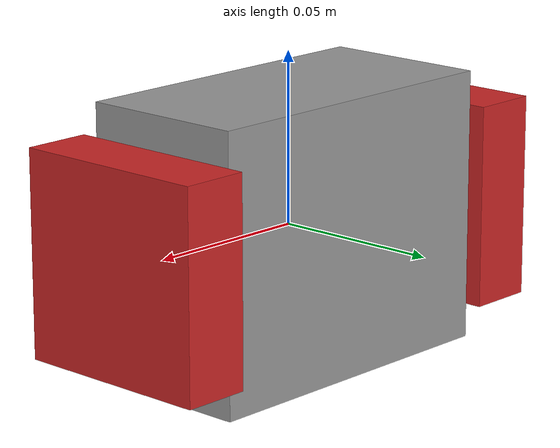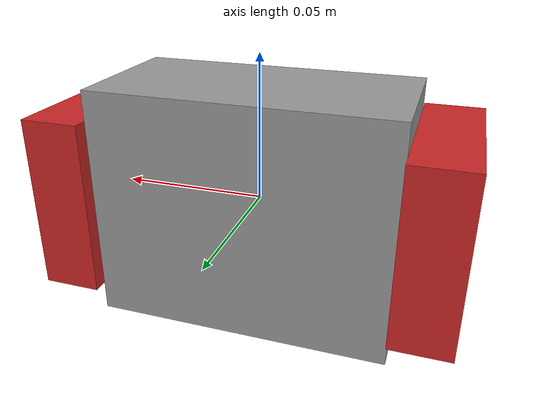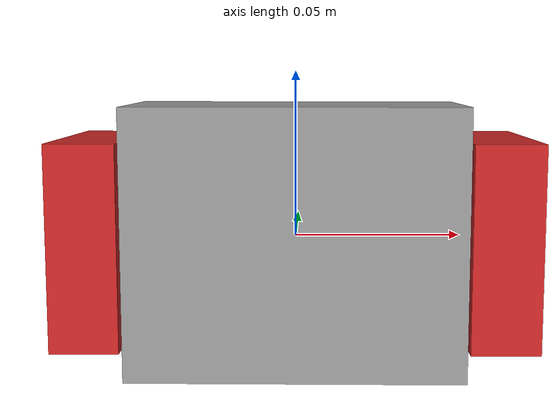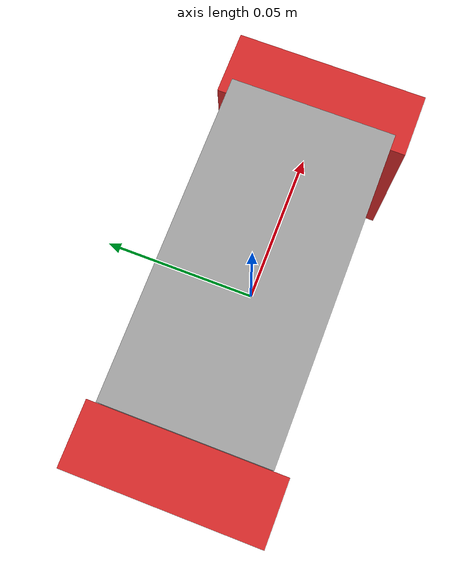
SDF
<?xml version="1.0"?>
<sdf version="1.6">
  <model name="simple_gripper">
    <!-- Palm of the gripper -->
    <link name="palm">
      <pose>0 0 0 0 0 0</pose>
      <inertial>
        <mass>0.5</mass>
        <inertia><ixx>0.01</ixx><iyy>0.01</iyy><izz>0.01</izz></inertia>
      </inertial>
      <visual name="palm_visual">
        <geometry>
          <box><size>0.1 0.05 0.08</size></box>
        </geometry>
        <material>
          <script>
            <uri>file://media/materials/scripts/gazebo.material</uri>
            <name>Gazebo/Grey</name>
          </script>
        </material>
      </visual>
      <collision name="palm_collision">
        <geometry>
          <box><size>0.1 0.05 0.08</size></box>
        </geometry>
      </collision>
    </link>

    <!-- Left finger (fixed) -->
    <link name="left_finger">
      <pose>0.06 0 0 0 0 0</pose>
      <inertial>
        <mass>0.1</mass>
        <inertia><ixx>0.001</ixx><iyy>0.001</iyy><izz>0.001</izz></inertia>
      </inertial>
      <visual name="left_visual">
        <geometry>
          <box><size>0.02 0.06 0.06</size></box>
        </geometry>
        <material>
          <script>
            <uri>file://media/materials/scripts/gazebo.material</uri>
            <name>Gazebo/Red</name>
          </script>
        </material>
      </visual>
      <collision name="left_collision">
        <geometry>
          <box><size>0.02 0.06 0.06</size></box>
        </geometry>
      </collision>
    </link>

    <!-- Right finger (fixed) -->
    <link name="right_finger">
      <pose>-0.06 0 0 0 0 0</pose>
      <inertial>
        <mass>0.1</mass>
        <inertia><ixx>0.001</ixx><iyy>0.001</iyy><izz>0.001</izz></inertia>
      </inertial>
      <visual name="right_visual">
        <geometry>
          <box><size>0.02 0.06 0.06</size></box>
        </geometry>
        <material>
          <script>
            <uri>file://media/materials/scripts/gazebo.material</uri>
            <name>Gazebo/Red</name>
          </script>
        </material>
      </visual>
      <collision name="right_collision">
        <geometry>
          <box><size>0.02 0.06 0.06</size></box>
        </geometry>
      </collision>
    </link>

    <!-- Joints to connect fingers to palm -->
    <joint name="left_finger_joint" type="prismatic">
      <parent>palm</parent>
      <child>left_finger</child>
      <axis>
        <xyz>0 1 0</xyz>
        <limit>
          <lower>-0.02</lower>
          <upper>0.02</upper>
        </limit>
      </axis>
      <pose>0.06 0 0 0 0 0</pose>
    </joint>

    <joint name="right_finger_joint" type="prismatic">
      <parent>palm</parent>
      <child>right_finger</child>
      <axis>
        <xyz>0 1 0</xyz>
        <limit>
          <lower>-0.02</lower>
          <upper>0.02</upper>
        </limit>
      </axis>
      <pose>-0.06 0 0 0 0 0</pose>
    </joint>

    <!-- Fixed joints -->
    <joint name="palm_joint" type="fixed">
      <parent>attachment_point</parent>
      <child>palm</child>
    </joint>
  </model>
</sdf>
